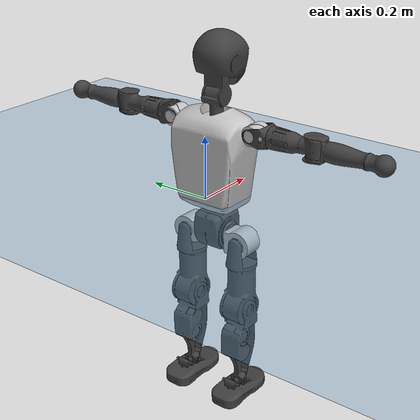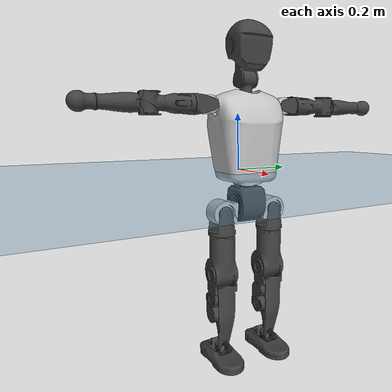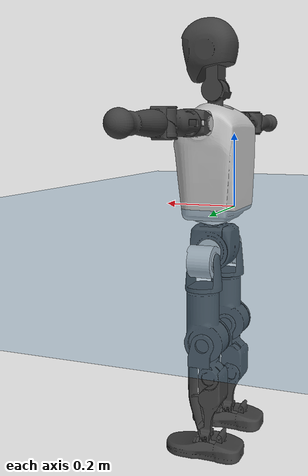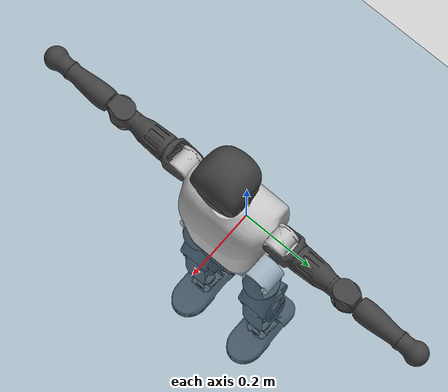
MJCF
<mujoco model="T1">
  <compiler angle="radian" assetdir="assets" balanceinertia="true" inertiafromgeom="false"/>

  <option timestep="0.005" density="1.2" viscosity="2e-05"/>

  <size nkey="1"/>

  <visual>
    <quality shadowsize="8192"/>
    <map shadowclip="0.5"/>
  </visual>

  <default>
    <default class="/">
      <joint armature="0.01" damping="0.01" frictionloss="0.1"/>
      <geom contype="0" conaffinity="0" group="1" solref="-1000 -80"/>
      <site size="0.01 0.005 0.005" group="5"/>
      <general forcelimited="true" biastype="affine" gainprm="25" biasprm="0 -25 -0.6"/>
      <default class="t1">
        <geom rgba="0.25 0.25 0.25 1"/>
        <default class="visual">
          <geom type="mesh" group="2"/>
        </default>
        <default class="collision">
          <geom group="3"/>
        </default>
        <default class="foot">
          <geom size="0.1115 0.05 0.015" type="box" condim="6" group="4" priority="1" solimp="0.015 1 0.015"/>
        </default>
        <default class="reward_collision_sphere">
          <geom group="5" rgba="1 0 0 1"/>
        </default>
      </default>
    </default>
  </default>

  <asset>
    <texture type="skybox" colorspace="auto" name="//unnamed_texture_0" builtin="gradient" rgb1="0.95 0.95 0.95" rgb2="0.95 0.95 0.95" width="100" height="600"/>
    <texture type="2d" colorspace="auto" name="texplane" builtin="checker" rgb1="0.345 0.575 0.748" rgb2="0.345 0.575 0.748" markrgb="1 1 1" width="512" height="512"/>
    <material name="MatPlane" class="/" texture="texplane" texuniform="true" texrepeat="2 2" specular="0.9"/>
    <mesh name="Trunk" class="/" file="Trunk.stl"/>
    <mesh name="H1" class="/" file="H1.stl"/>
    <mesh name="H2" class="/" file="H2.stl"/>
    <mesh name="AL1" class="/" file="AL1.stl"/>
    <mesh name="AL2" class="/" file="AL2.stl"/>
    <mesh name="AL3" class="/" file="AL3.stl"/>
    <mesh name="left_hand_link" class="/" file="left_hand_link.stl"/>
    <mesh name="AR1" class="/" file="AR1.stl"/>
    <mesh name="AR2" class="/" file="AR2.stl"/>
    <mesh name="AR3" class="/" file="AR3.stl"/>
    <mesh name="right_hand_link" class="/" file="right_hand_link.stl"/>
    <mesh name="Waist" class="/" file="Waist.stl"/>
    <mesh name="Hip_Pitch_Left" class="/" file="Hip_Pitch_Left.stl"/>
    <mesh name="Hip_Roll_Left" class="/" file="Hip_Roll_Left.stl"/>
    <mesh name="Hip_Yaw_Left" class="/" file="Hip_Yaw_Left.stl"/>
    <mesh name="Shank_Left" class="/" file="Shank_Left.stl"/>
    <mesh name="Ankle_Cross_Left" class="/" file="Ankle_Cross_Left.stl"/>
    <mesh name="left_foot_link" class="/" file="left_foot_link.stl"/>
    <mesh name="Hip_Pitch_Right" class="/" file="Hip_Pitch_Right.stl"/>
    <mesh name="Hip_Roll_Right" class="/" file="Hip_Roll_Right.stl"/>
    <mesh name="Hip_Yaw_Right" class="/" file="Hip_Yaw_Right.stl"/>
    <mesh name="Shank_Right" class="/" file="Shank_Right.stl"/>
    <mesh name="Ankle_Cross_Right" class="/" file="Ankle_Cross_Right.stl"/>
    <mesh name="right_foot_link" class="/" file="right_foot_link.stl"/>
  </asset>

  <worldbody>
    <geom name="floor" class="/" size="100 100 0.125" type="plane" group="0" material="MatPlane"/>
    <light name="toplight_shadow" class="/" pos="0 0 5" dir="0.0990148 0.0990148 -0.990148" type="directional" ambient="0.04 0.04 0.04" diffuse="0.55 0.55 0.55" specular="0.12 0.12 0.12"/>
    <light name="toplight_fill" class="/" pos="0 0 5" dir="0.0990148 0.0990148 -0.990148" type="directional" castshadow="false" ambient="0.04 0.04 0.04" diffuse="0.3 0.3 0.3" specular="0.08 0.08 0.08"/>
    <body name="trunk" childclass="t1" pos="0.000151174 0.000571877 -0.000197434" quat="1 -3.46516e-05 2.49984e-06 3.17794e-05">
      <inertial pos="0.0489191 3.99728e-05 0.109452" quat="0.999959 -0.000121384 -0.00897192 0.00135879" mass="10.2119" diaginertia="0.0495155 0.0555431 0.0662898"/>
      <joint name="//unnamed_joint_0" type="free" armature="0" damping="0" frictionloss="0"/>
      <geom name="//unnamed_geom_1" class="visual" rgba="0.76 0.76 0.76 1" mesh="Trunk"/>
      <geom name="//unnamed_geom_2" class="collision" size="0.0714854 0.0953138 0.142971" pos="0.0531483 0 0.12448" type="box"/>
      <geom name="//unnamed_geom_3" class="reward_collision_sphere" size="0.109611" pos="0.0531483 0 0.103733"/>
      <geom name="//unnamed_geom_4" class="reward_collision_sphere" size="0.0142971" pos="0.0531483 0.0795837 0"/>
      <geom name="//unnamed_geom_5" class="reward_collision_sphere" size="0.0142971" pos="0.0531483 -0.0795837 0"/>
      <geom name="//unnamed_geom_6" class="reward_collision_sphere" size="0.0142971" pos="0.0531483 0.100182 0.18672"/>
      <geom name="//unnamed_geom_7" class="reward_collision_sphere" size="0.0142971" pos="0.0531483 -0.100182 0.18672"/>
      <site name="imu" pos="-0.00431391 0.00237238 0.00431234" size="0.00953138"/>
      <camera name="track" pos="0 -1.87256 0" quat="0.707107 0.707107 0 0" mode="trackcom"/>
      <camera name="ego_camera" pos="0.108068 0 0.435679" quat="-0.5 -0.5 0.5 0.5"/>
      <body name="H1" pos="0.0556928 -0.000706225 0.251684" quat="1 4.5278e-06 -1.29464e-05 8.47468e-05">
        <inertial pos="-0.000187927 -0.00151096 0.0591741" quat="0.763503 -0.0126402 0.00198058 0.645677" mass="0.377569" diaginertia="0.000129355 0.000159789 0.000180714"/>
        <joint name="AAHead_yaw" pos="0 0 0" axis="-9.20088e-06 0.000485966 1" range="-1.5789 1.56769" armature="0.00991454" damping="0.00927273" frictionloss="0.0958084"/>
        <geom name="//unnamed_geom_8" class="visual" mesh="H1"/>
        <body name="H2" pos="-0.00108475 -0.00018644 0.0633947" quat="1 -3.83268e-05 0.000170488 9.2262e-05">
          <inertial pos="0.00634219 0.000378501 0.102166" quat="0.988458 0.106322 -0.0735501 -0.078973" mass="0.54783" diaginertia="0.00110779 0.00139633 0.00208118"/>
          <joint name="Head_pitch" pos="0 0 0" axis="-0.00140488 -0.999999 -0.000962168" range="-1.22476 0.353403" armature="0.0095361" damping="0.00600586" frictionloss="0.0982155"/>
          <geom name="//unnamed_geom_9" class="visual" mesh="H2"/>
          <geom name="//unnamed_geom_10" class="collision" size="0.0762511" pos="0.00885805 0 0.114106"/>
          <geom name="//unnamed_geom_11" class="reward_collision_sphere" size="0.0857825" pos="0.0177161 0 0.103733"/>
        </body>
      </body>
      <body name="AL1" pos="0.0514366 0.0998963 0.226872" quat="1 -1.31213e-07 0.000429354 3.15781e-07">
        <inertial pos="-0.000752383 0.0416418 -0.000487222" quat="0.505069 0.496004 -0.503864 0.494981" mass="0.456457" diaginertia="0.000744231 0.000927555 0.000353993"/>
        <joint name="Left_Shoulder_Pitch" pos="0 0 0" axis="-2.12239e-05 0.999997 -0.00227691" stiffness="0.00207234" range="-3.3009 1.23086" armature="0.00937877" damping="0.00795068" frictionloss="0.0953182"/>
        <geom name="//unnamed_geom_12" class="visual" rgba="0.76 0.76 0.76 1" mesh="AL1"/>
        <body name="AL2" pos="0.00144033 0.0449155 0.00087591" quat="1 -5.80115e-05 -4.28876e-05 6.40623e-05">
          <inertial pos="0.00267053 0.0359665 0.000406049" quat="0.48854 0.512449 -0.489956 0.508593" mass="0.139459" diaginertia="0.000220026 0.000249351 0.000212096"/>
          <joint name="Left_Shoulder_Roll" pos="0 0 0" axis="-0.999996 0.00246786 -0.000990473" range="-1.57405 1.74097" armature="0.00947734" damping="0.00303587" frictionloss="0.0953153"/>
          <geom name="//unnamed_geom_13" class="visual" mesh="AL2"/>
          <body name="AL3" pos="0.000910104 0.0572805 -8.82016e-05" quat="1 -1.65763e-06 7.79876e-07 1.93221e-07">
            <inertial pos="0.000584549 0.079939 -0.000451556" quat="0.706125 0.708087 0.00019443 -0.000210371" mass="0.880871" diaginertia="0.00694383 0.00918218 0.000737296"/>
            <joint name="Left_Elbow_Pitch" pos="0 0 0" axis="0.00115591 -0.999999 0.000553558" range="-2.27914 2.26288" armature="0.00950813" damping="0.0122701" frictionloss="0.0963464"/>
            <geom name="//unnamed_geom_14" class="visual" mesh="AL3"/>
            <geom name="//unnamed_geom_15" class="collision" size="0.0285942 0.0714854" pos="0 0.0468139 0" quat="0.707105 0.707108 0 0" type="cylinder"/>
            <geom name="//unnamed_geom_16" class="reward_collision_sphere" size="0.034313"/>
            <body name="left_hand_link" pos="0.000251141 0.137141 -0.000425288" quat="1 -8.32087e-05 5.27971e-05 5.42183e-05">
              <inertial pos="-0.000282265 0.103593 0.000950344" quat="0.70711 0.707103 -0.000580529 -0.000222515" mass="0.283044" diaginertia="0.004433 0.005811 0.000255851"/>
              <joint name="Left_Elbow_Yaw" pos="0 0 0" axis="0.00319576 0.00244255 0.999992" stiffness="0.00243653" range="-2.43781 -0.00760573" armature="0.009086" damping="0.00960574" frictionloss="0.0952389"/>
              <geom name="//unnamed_geom_17" class="visual" mesh="left_hand_link"/>
              <geom name="//unnamed_geom_18" class="collision" size="0.0285942 0.0833996" pos="0 0.121716 0" quat="0.707105 0.707108 0 0" type="cylinder"/>
              <geom name="//unnamed_geom_19" class="reward_collision_sphere" size="0.0476569"/>
              <geom name="//unnamed_geom_20" class="reward_collision_sphere" size="0.0333598" pos="0 0.102991 0"/>
              <geom name="//unnamed_geom_21" class="reward_collision_sphere" size="0.0333598" pos="0 0.2013 0"/>
            </body>
          </body>
        </body>
      </body>
      <body name="AR1" pos="0.0505695 -0.0995769 0.226489" quat="1 2.45791e-05 0.000222689 3.13629e-05">
        <inertial pos="-0.00121187 -0.0419472 -0.000425191" quat="0.50479 0.494964 -0.504569 0.495588" mass="0.459591" diaginertia="0.000753306 0.000934427 0.000352155"/>
        <joint name="Right_Shoulder_Pitch" pos="0 0 0" axis="0.0044519 -0.99999 -0.000142501" stiffness="0.000112289" range="-1.24361 3.30831" armature="0.00941239" damping="0.00763687" frictionloss="0.0968306"/>
        <geom name="//unnamed_geom_22" class="visual" rgba="0.76 0.76 0.76 1" mesh="AR1"/>
        <body name="AR2" pos="-0.000459582 -0.0437516 0.000250573" quat="1 -1.58708e-05 1.37278e-05 -0.000141831">
          <inertial pos="0.00339939 -0.0353189 0.000110105" quat="0.513294 0.49057 -0.510252 0.485297" mass="0.140171" diaginertia="0.00022099 0.000249119 0.000214628"/>
          <joint name="Right_Shoulder_Roll" pos="0 0 0" axis="-0.999957 3.62227e-05 0.00928961" range="-1.73261 1.58012" armature="0.00952798" damping="0.0084701" frictionloss="0.095437"/>
          <geom name="//unnamed_geom_23" class="visual" mesh="AR2"/>
          <body name="AR3" pos="0.000650387 -0.0568737 0.000307883" quat="1 6.65644e-05 0.000107247 0.000103021">
            <inertial pos="0.00019667 -0.0802317 -0.000367905" quat="0.707183 0.707029 -0.000449259 0.00154261" mass="0.886329" diaginertia="0.00710941 0.00932987 0.000759626"/>
            <joint name="Right_Elbow_Pitch" pos="0 0 0" axis="0.00151803 0.999991 0.00395683" range="-2.27285 2.25295" armature="0.00959798" damping="0.00736788" frictionloss="0.0927411"/>
            <geom name="//unnamed_geom_24" class="visual" mesh="AR3"/>
            <geom name="//unnamed_geom_25" class="collision" size="0.0285942 0.0714854" pos="0 -0.0468139 0" quat="0.707105 0.707108 0 0" type="cylinder"/>
            <geom name="//unnamed_geom_26" class="reward_collision_sphere" size="0.034313"/>
            <body name="right_hand_link" pos="0.000600301 -0.136768 -0.000663343" quat="1 -8.00445e-05 2.87565e-05 -0.000182504">
              <inertial pos="-0.000175747 -0.102384 0.00141092" quat="0.706196 0.708016 0.000464421 6.27589e-05" mass="0.283038" diaginertia="0.00438675 0.00587875 0.000256499"/>
              <joint name="Right_Elbow_Yaw" pos="0 0 0" axis="0.000188493 0.00181253 0.999998" range="0.00311209 2.44679" armature="0.00951065" damping="0.00842075" frictionloss="0.0953164"/>
              <geom name="//unnamed_geom_27" class="visual" mesh="right_hand_link"/>
              <geom name="//unnamed_geom_28" class="collision" size="0.0285942 0.0833996" pos="0 -0.121716 0" quat="0.707105 0.707108 0 0" type="cylinder"/>
              <geom name="//unnamed_geom_29" class="reward_collision_sphere" size="0.0476569"/>
              <geom name="//unnamed_geom_30" class="reward_collision_sphere" size="0.0333598" pos="0 -0.102991 0"/>
              <geom name="//unnamed_geom_31" class="reward_collision_sphere" size="0.0333598" pos="0 -0.2013 0"/>
            </body>
          </body>
        </body>
      </body>
      <body name="Waist" pos="0.0560811 -0.00114461 -0.120225" quat="1 -5.24046e-06 0.000202821 -1.19109e-05">
        <inertial pos="0.00207263 -0.00124168 0.00763455" quat="0.984351 0.00120337 -0.176206 0.00158517" mass="2.27555" diaginertia="0.002944 0.00388716 0.00581237"/>
        <joint name="Waist" pos="0 0 0" axis="-0.000242216 -3.61233e-05 1" range="-1.56322 1.57463" armature="0.00943432" damping="0.00452428" frictionloss="0.0916373"/>
        <geom name="//unnamed_geom_32" class="visual" mesh="Waist"/>
        <body name="Hip_Pitch_Left" pos="-0.000473218 0.0995219 0.000115228" quat="1 -4.63079e-05 7.82088e-05 -7.60436e-05">
          <inertial pos="0.000726617 -0.00722214 -0.0186493" quat="0.975135 0.221106 0.0148042 0.00239292" mass="0.88612" diaginertia="0.000990018 0.00105551 0.00151315"/>
          <joint name="Left_Hip_Pitch" pos="0 0 0" axis="-0.000443604 0.999998 0.00215928" range="-1.79364 1.56251" armature="0.00934603" damping="0.0100046" frictionloss="0.0961694"/>
          <geom name="//unnamed_geom_33" class="visual" rgba="0.76 0.76 0.76 1" mesh="Hip_Pitch_Left"/>
          <body name="Hip_Roll_Left" pos="0.000579777 -0.000477038 -0.0204469" quat="1 3.31429e-05 0.000173692 0.000213913">
            <inertial pos="0.000982019 0.000185707 -0.0552081" quat="0.706982 -0.00605102 -0.00612712 0.707179" mass="0.335466" diaginertia="0.000941319 0.00109072 0.000614431"/>
            <joint name="Left_Hip_Roll" pos="0 0 0" axis="-1 0.000684239 0.000297131" range="-1.56428 0.200781" armature="0.00969682" damping="0.0107349" frictionloss="0.0946909"/>
            <geom name="//unnamed_geom_34" class="visual" mesh="Hip_Roll_Left"/>
            <geom name="//unnamed_geom_35" class="reward_collision_sphere" size="0.0524226"/>
            <body name="Hip_Yaw_Left" pos="0.0007142 -0.000582209 -0.0846249" quat="1 -5.21507e-05 7.96062e-06 3.80518e-05">
              <inertial pos="-0.00531207 -0.000248286 -0.0925563" quat="0.695436 -0.0345674 -0.0302115 0.71712" mass="1.87968" diaginertia="0.0139781 0.0180421 0.00307078"/>
              <joint name="Left_Hip_Yaw" pos="0 0 0" axis="0.00179015 -0.00110565 -0.999998" range="-1.01531 1.01999" armature="0.00913364" damping="0.00209363" frictionloss="0.0946281"/>
              <geom name="//unnamed_geom_36" class="visual" mesh="Hip_Yaw_Left"/>
              <geom name="//unnamed_geom_37" class="collision" size="0.0476569 0.0762511" type="cylinder"/>
              <body name="Shank_Left" pos="-0.011883 -5.39567e-05 -0.13963" quat="1 8.40804e-05 -4.84305e-05 0.000199677">
                <inertial pos="-0.00495022 0.000326322 -0.128481" quat="0.99755 -0.000582995 -0.0234353 0.065914" mass="1.51131" diaginertia="0.0190326 0.0250249 0.00227821"/>
                <joint name="Left_Knee_Pitch" pos="0 0 0" axis="0.00104196 0.999999 -0.000588888" range="-0.0183195 2.3397" armature="0.00957637" damping="0.0120132" frictionloss="0.0936477"/>
                <geom name="//unnamed_geom_38" class="visual" mesh="Shank_Left"/>
                <geom name="//unnamed_geom_39" class="collision" size="0.0476569 0.0714854" pos="0 0 -0.12448" type="cylinder"/>
                <geom name="//unnamed_geom_40" class="reward_collision_sphere" size="0.061954"/>
                <body name="Ankle_Cross_Left" pos="0.00056262 1.79398e-05 -0.290264" quat="1 7.70874e-05 2.2619e-05 -0.000127104">
                  <inertial pos="-0.0030518 9.11394e-05 -0.00831986" quat="0.443605 0.551035 0.550569 0.443225" mass="0.0637372" diaginertia="1.56602e-05 1.8402e-05 1.36197e-05"/>
                  <joint name="Left_Ankle_Pitch" pos="0 0 0" axis="-0.00272477 0.999994 0.00232715" range="-0.852823 0.358305" armature="0.00970951" damping="0.0082397" frictionloss="0.0916723"/>
                  <geom name="//unnamed_geom_41" class="visual" mesh="Ankle_Cross_Left"/>
                  <body name="left_foot_link" pos="-0.000496077 -0.000384059 -0.0124539" quat="1 0.000151113 -5.65138e-05 8.20092e-05">
                    <inertial pos="-0.00011094 0.000447536 -0.00941464" quat="0.00327941 0.620167 -0.000845688 0.784462" mass="0.601541" diaginertia="0.00146258 0.00173248 0.00261438"/>
                    <joint name="Left_Ankle_Roll" pos="0 0 0" axis="-0.999999 -0.00123173 0.000115731" range="-0.436488 0.440513" armature="0.00916445" damping="0.00870912" frictionloss="0.0960485"/>
                    <geom name="//unnamed_geom_42" class="visual" mesh="left_foot_link"/>
                    <geom name="left_foot" class="foot" size="0.10043 0.0495979 0.0146008" pos="0.00885805 0 -0.01556"/>
                    <geom name="//unnamed_geom_44" class="reward_collision_sphere" size="0.0495632" pos="0.00885805 0 -0.01556"/>
                    <geom name="//unnamed_geom_45" class="reward_collision_sphere" size="0.0285942" pos="0.0841514 -0.0215344 -0.01556"/>
                    <geom name="//unnamed_geom_46" class="reward_collision_sphere" size="0.0285942" pos="-0.0620063 -0.0215344 -0.01556"/>
                    <site name="left_foot" class="foot" pos="0.00885805 0 -0.01556" size="0.00953138"/>
                  </body>
                </body>
              </body>
            </body>
          </body>
        </body>
        <body name="Hip_Pitch_Right" pos="-0.000256204 -0.0988235 -4.65676e-05" quat="1 6.5701e-05 0.000268299 -0.000428772">
          <inertial pos="0.000567785 0.00791614 -0.0194759" quat="0.973341 -0.228872 0.0144731 -0.00398711" mass="0.882472" diaginertia="0.000978933 0.00104879 0.00147814"/>
          <joint name="Right_Hip_Pitch" pos="0 0 0" axis="-0.000397294 -0.999998 -0.00184366" stiffness="0.000202404" range="-1.57338 1.79562" armature="0.00908939" damping="0.0081927" frictionloss="0.0963884"/>
          <geom name="//unnamed_geom_47" class="visual" rgba="0.76 0.76 0.76 1" mesh="Hip_Pitch_Right"/>
          <body name="Hip_Roll_Right" pos="0.000136139 2.63788e-05 -0.0200666" quat="1 -4.85361e-07 3.87421e-05 8.20715e-05">
            <inertial pos="0.00163531 -0.0001559 -0.0565605" quat="0.706634 -0.00523819 -0.00625905 0.707532" mass="0.329907" diaginertia="0.000940633 0.00107098 0.000610914"/>
            <joint name="Right_Hip_Roll" pos="0 0 0" axis="-1 3.58738e-06 3.28852e-06" range="-0.20254 1.5624" armature="0.00972078" damping="0.00494297" frictionloss="0.0947932"/>
            <geom name="//unnamed_geom_48" class="visual" mesh="Hip_Roll_Right"/>
            <geom name="//unnamed_geom_49" class="reward_collision_sphere" size="0.0524226"/>
            <body name="Hip_Yaw_Right" pos="0.000638961 0.00100361 -0.0855272" quat="1 9.29398e-05 4.75633e-05 -0.000429701">
              <inertial pos="-0.00619413 0.000637978 -0.093542" quat="0.712762 -0.0302274 -0.0334434 0.699956" mass="1.87758" diaginertia="0.0140061 0.0180609 0.0031084"/>
              <joint name="Right_Hip_Yaw" pos="0 0 0" axis="0.000867532 -0.0019293 -0.999998" range="-1.01062 0.997321" armature="0.00990174" damping="0.00338397" frictionloss="0.0939782"/>
              <geom name="//unnamed_geom_50" class="visual" mesh="Hip_Yaw_Right"/>
              <geom name="//unnamed_geom_51" class="collision" size="0.0476569 0.0762511" type="cylinder"/>
              <body name="Shank_Right" pos="-0.0115435 -0.000611331 -0.138456" quat="1 -0.000136335 0.000378307 -0.000262328">
                <inertial pos="-0.00584688 -0.000503875 -0.126998" quat="0.99926 -0.000528897 -0.0234615 -0.0304596" mass="1.55832" diaginertia="0.0190329 0.0251807 0.00233955"/>
                <joint name="Right_Knee_Pitch" pos="0 0 0" axis="0.0032407 -0.999994 0.00110204" range="-2.33912 -0.0206578" armature="0.00955899" damping="0.0069954" frictionloss="0.0966211"/>
                <geom name="//unnamed_geom_52" class="visual" mesh="Shank_Right"/>
                <geom name="//unnamed_geom_53" class="collision" size="0.0476569 0.0714854" pos="0 0 -0.12448" type="cylinder"/>
                <geom name="//unnamed_geom_54" class="reward_collision_sphere" size="0.061954"/>
                <body name="Ankle_Cross_Right" pos="-0.00131771 -0.000543848 -0.29037" quat="1 -0.000102202 -0.000111096 -0.000232304">
                  <inertial pos="-0.00307027 -0.000327887 -0.00835676" quat="0.443059 0.550875 0.551062 0.443358" mass="0.0631556" diaginertia="1.56893e-05 1.84508e-05 1.37666e-05"/>
                  <joint name="Right_Ankle_Pitch" pos="0 0 0" axis="0.0044207 -0.99999 0.000179831" stiffness="0.00030968" range="-0.363737 0.865056" armature="0.00940615" damping="0.00599542" frictionloss="0.0945041"/>
                  <geom name="//unnamed_geom_55" class="visual" mesh="Ankle_Cross_Right"/>
                  <body name="right_foot_link" pos="-0.000565092 -0.000994421 -0.0128969" quat="1 -2.69426e-05 -1.49354e-05 -1.70292e-05">
                    <inertial pos="1.06248e-05 -0.000683975 -0.00932683" quat="-0.000187263 0.621061 0.0026574 0.783757" mass="0.593598" diaginertia="0.00145122 0.00170475 0.00261275"/>
                    <joint name="Right_Ankle_Roll" pos="0 0 0" axis="-0.999999 -0.00110138 0.00116869" range="-0.446517 0.454325" armature="0.00934484" damping="0.00562592" frictionloss="0.0941278"/>
                    <geom name="//unnamed_geom_56" class="visual" mesh="right_foot_link"/>
                    <geom name="right_foot" class="foot" size="0.0991256 0.045929 0.0142901" pos="0.00885805 0 -0.01556"/>
                    <geom name="//unnamed_geom_58" class="reward_collision_sphere" size="0.0381255"/>
                    <geom name="//unnamed_geom_59" class="reward_collision_sphere" size="0.0285942" pos="0.00885805 0 -0.01556"/>
                    <geom name="//unnamed_geom_60" class="reward_collision_sphere" size="0.0285942" pos="0.0841514 0.0215344 -0.01556"/>
                    <geom name="//unnamed_geom_61" class="reward_collision_sphere" size="0.0285942" pos="-0.0620063 0.0215344 -0.01556"/>
                    <site name="right_foot" class="foot" pos="0.00885805 0 -0.01556" size="0.00953138"/>
                  </body>
                </body>
              </body>
            </body>
          </body>
        </body>
      </body>
    </body>
  </worldbody>

  <contact>
    <pair class="/" geom1="floor" geom2="left_foot" name="//unnamed_contact_0"/>
    <pair class="/" geom1="floor" geom2="right_foot" name="//unnamed_contact_1"/>
  </contact>

  <actuator>
    <general name="AAHead_yaw" class="/" joint="AAHead_yaw" forcerange="-6.59553 6.59553" gainprm="23.5316" biasprm="0 -23.5316 -0.552182"/>
    <general name="Head_pitch" class="/" joint="Head_pitch" forcerange="-6.74574 6.74574" gainprm="23.5316" biasprm="0 -23.5316 -0.552182"/>
    <general name="Left_Shoulder_Pitch" class="/" joint="Left_Shoulder_Pitch" forcerange="-16.6178 16.6178" gainprm="23.5316" biasprm="0 -23.5316 -0.552182"/>
    <general name="Left_Shoulder_Roll" class="/" joint="Left_Shoulder_Roll" forcerange="-17.112 17.112" gainprm="23.5316" biasprm="0 -23.5316 -0.552182"/>
    <general name="Left_Elbow_Pitch" class="/" joint="Left_Elbow_Pitch" forcerange="-17.5428 17.5428" gainprm="23.5316" biasprm="0 -23.5316 -0.552182"/>
    <general name="Left_Elbow_Yaw" class="/" joint="Left_Elbow_Yaw" forcerange="-17.1657 17.1657" gainprm="23.5316" biasprm="0 -23.5316 -0.552182"/>
    <general name="Right_Shoulder_Pitch" class="/" joint="Right_Shoulder_Pitch" forcerange="-17.0644 17.0644" gainprm="23.5316" biasprm="0 -23.5316 -0.552182"/>
    <general name="Right_Shoulder_Roll" class="/" joint="Right_Shoulder_Roll" forcerange="-17.2004 17.2004" gainprm="23.5316" biasprm="0 -23.5316 -0.552182"/>
    <general name="Right_Elbow_Pitch" class="/" joint="Right_Elbow_Pitch" forcerange="-17.6628 17.6628" gainprm="23.5316" biasprm="0 -23.5316 -0.552182"/>
    <general name="Right_Elbow_Yaw" class="/" joint="Right_Elbow_Yaw" forcerange="-17.5291 17.5291" gainprm="23.5316" biasprm="0 -23.5316 -0.552182"/>
    <general name="Waist" class="/" joint="Waist" forcerange="-29.3825 29.3825" gainprm="23.5316" biasprm="0 -23.5316 -0.552182"/>
    <general name="Left_Hip_Pitch" class="/" joint="Left_Hip_Pitch" forcerange="-43.3122 43.3122" gainprm="23.5316" biasprm="0 -23.5316 -0.552182"/>
    <general name="Left_Hip_Roll" class="/" joint="Left_Hip_Roll" forcerange="-29.23 29.23" gainprm="23.5316" biasprm="0 -23.5316 -0.552182"/>
    <general name="Left_Hip_Yaw" class="/" joint="Left_Hip_Yaw" forcerange="-29.3256 29.3256" gainprm="23.5316" biasprm="0 -23.5316 -0.552182"/>
    <general name="Left_Knee_Pitch" class="/" joint="Left_Knee_Pitch" forcerange="-56.6965 56.6965" gainprm="23.5316" biasprm="0 -23.5316 -0.552182"/>
    <general name="Left_Ankle_Pitch" class="/" joint="Left_Ankle_Pitch" forcerange="-19.1326 19.1326" gainprm="23.5316" biasprm="0 -23.5316 -0.552182"/>
    <general name="Left_Ankle_Roll" class="/" joint="Left_Ankle_Roll" forcerange="-14.475 14.475" gainprm="23.5316" biasprm="0 -23.5316 -0.552182"/>
    <general name="Right_Hip_Pitch" class="/" joint="Right_Hip_Pitch" forcerange="-42.7047 42.7047" gainprm="23.5316" biasprm="0 -23.5316 -0.552182"/>
    <general name="Right_Hip_Roll" class="/" joint="Right_Hip_Roll" forcerange="-28.2409 28.2409" gainprm="23.5316" biasprm="0 -23.5316 -0.552182"/>
    <general name="Right_Hip_Yaw" class="/" joint="Right_Hip_Yaw" forcerange="-29.5168 29.5168" gainprm="23.5316" biasprm="0 -23.5316 -0.552182"/>
    <general name="Right_Knee_Pitch" class="/" joint="Right_Knee_Pitch" forcerange="-58.9676 58.9676" gainprm="23.5316" biasprm="0 -23.5316 -0.552182"/>
    <general name="Right_Ankle_Pitch" class="/" joint="Right_Ankle_Pitch" forcerange="-19.1735 19.1735" gainprm="23.5316" biasprm="0 -23.5316 -0.552182"/>
    <general name="Right_Ankle_Roll" class="/" joint="Right_Ankle_Roll" forcerange="-13.9857 13.9857" gainprm="23.5316" biasprm="0 -23.5316 -0.552182"/>
  </actuator>

  <sensor>
    <gyro site="imu" name="imu_angular_velocity"/>
    <velocimeter site="imu" name="imu_linear_velocity"/>
    <framelinvel objtype="site" objname="left_foot" name="left_foot_global_linear_velocity"/>
    <framelinvel objtype="site" objname="right_foot" name="right_foot_global_linear_velocity"/>
  </sensor>

  <keyframe>
    <key name="home" qpos="0 0 0.6385 1 0 0 0 0 0 0 1.4 0 -0.4 0 -1.4 0 0.4 0 -0.4 0 0 0.8 -0.4 0 0.4 0 0 -0.8 0.4 0"/>
  </keyframe>
</mujoco>
